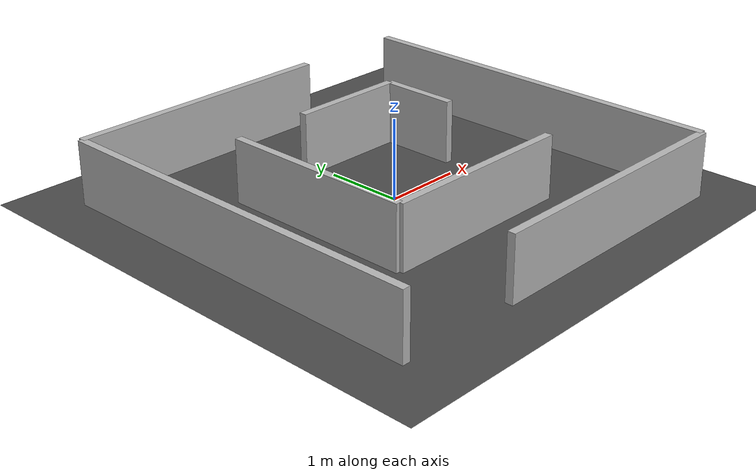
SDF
<?xml version="1.0" ?>
<sdf version="1.8">
  <world name="two_layer_maze">
    <scene>
      <ambient>0.7 0.7 0.7 1</ambient>
      <background>0.3 0.3 0.3 1</background>
      <shadows>false</shadows>
    </scene>

    <physics name="1ms" type="ignored">
      <max_step_size>0.001</max_step_size>
      <real_time_factor>1.0</real_time_factor>
    </physics>

    <plugin filename="gz-sim-physics-system" name="gz::sim::systems::Physics"/>
    <plugin filename="gz-sim-user-commands-system" name="gz::sim::systems::UserCommands"/>
    <plugin filename="gz-sim-scene-broadcaster-system" name="gz::sim::systems::SceneBroadcaster"/>

    <light type="directional" name="sun">
      <cast_shadows>false</cast_shadows>
      <pose>0 0 10 0 0 0</pose>
      <direction>-0.5 0.1 -0.9</direction>
    </light>
        <model name="ground_plane">
      <static>true</static>
      <link name="link">
        <collision name="collision">
          <geometry><plane><normal>0 0 1</normal><size>10 10</size></plane></geometry>
        </collision>
        <visual name="visual">
          <geometry><plane><normal>0 0 1</normal><size>10 10</size></plane></geometry>
          <material><ambient>0.2 0.2 0.2 1</ambient><diffuse>0.3 0.3 0.3 1</diffuse></material>
        </visual>
      </link>
    </model>
    <model name="maze">
      <static>true</static>
      <pose>0 0 0.4 0 0 0</pose>

      <link name="out_s"><pose>0.75 -2.5 0 0 0 0</pose><visual name="v"><geometry><box><size>3.5 0.1 0.8</size></box></geometry></visual><collision name="c"><geometry><box><size>3.5 0.1 0.8</size></box></geometry></collision></link>

      <link name="out_n"><pose>-0.75 2.5 0 0 0 0</pose><visual name="v"><geometry><box><size>3.5 0.1 0.8</size></box></geometry></visual><collision name="c"><geometry><box><size>3.5 0.1 0.8</size></box></geometry></collision></link>

      <link name="out_e"><pose>2.5 0 0 0 0 0</pose><visual name="v"><geometry><box><size>0.1 5.0 0.8</size></box></geometry></visual><collision name="c"><geometry><box><size>0.1 5.0 0.8</size></box></geometry></collision></link>
      <link name="out_w"><pose>-2.5 0 0 0 0 0</pose><visual name="v"><geometry><box><size>0.1 5.0 0.8</size></box></geometry></visual><collision name="c"><geometry><box><size>0.1 5.0 0.8</size></box></geometry></collision></link>

      <link name="in_w"><pose>-1.25 0 0 0 0 0</pose><visual name="v"><geometry><box><size>0.1 2.5 0.8</size></box></geometry></visual></link>

      <link name="in_e"><pose>1.25 0.75 0 0 0 0</pose><visual name="v"><geometry><box><size>0.1 1.0 0.8</size></box></geometry></visual></link>

      <link name="in_n"><pose>0.5 1.25 0 0 0 1.57</pose><visual name="v"><geometry><box><size>0.1 1.5 0.8</size></box></geometry></visual></link>

      <link name="in_s"><pose>0 -1.25 0 0 0 1.57</pose><visual name="v"><geometry><box><size>0.1 2.5 0.8</size></box></geometry></visual></link>
    </model>
  </world>
</sdf>
